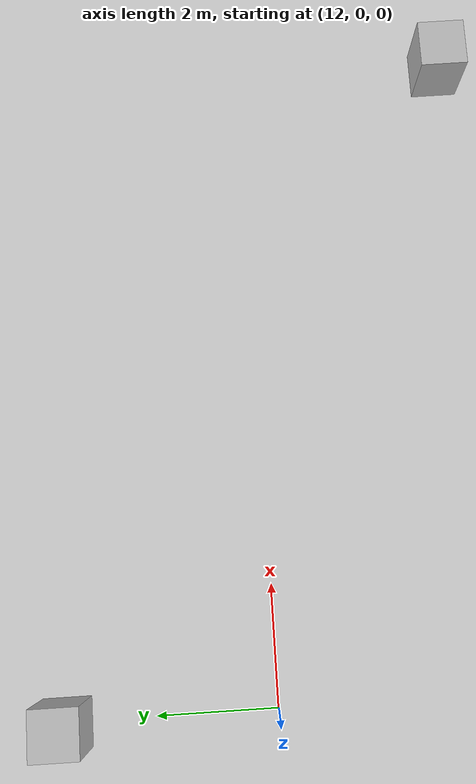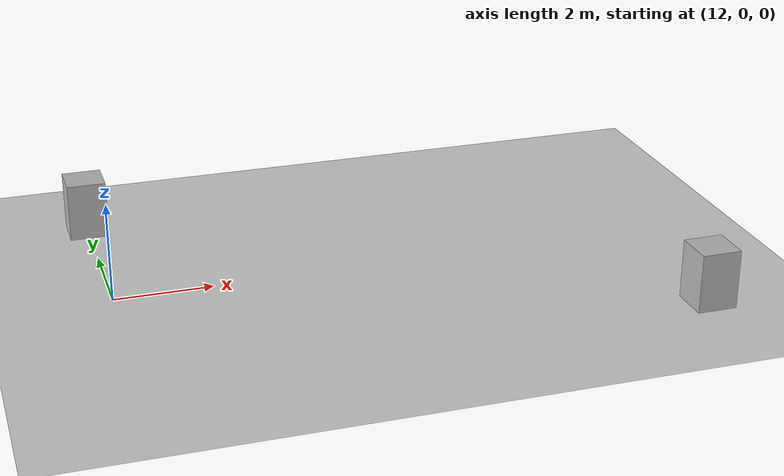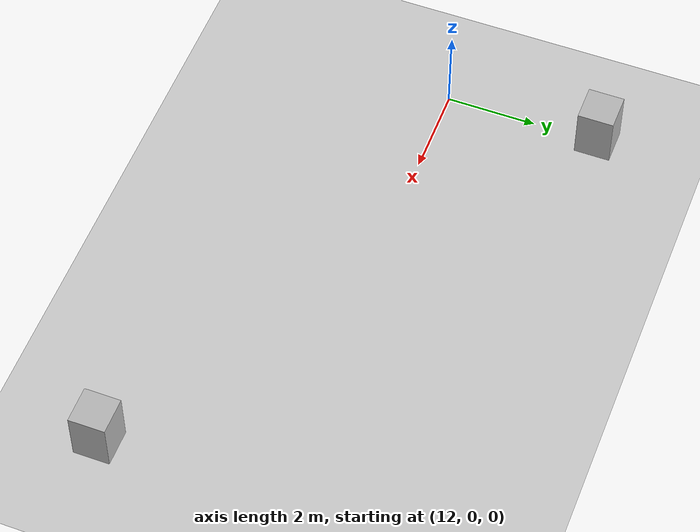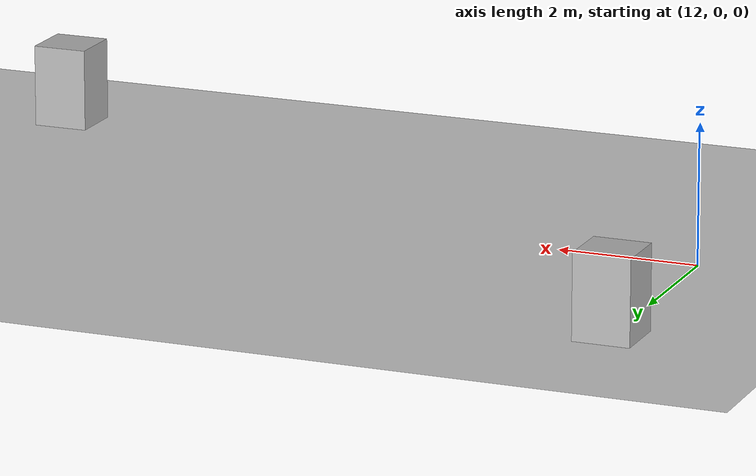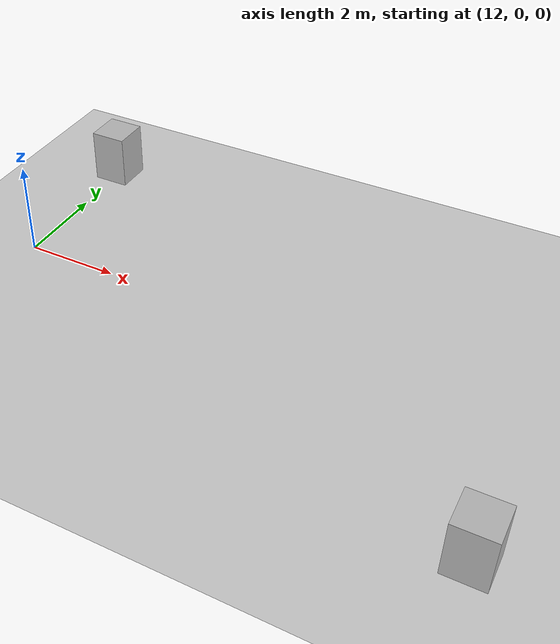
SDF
<?xml version="1.0"?>
<sdf version="1.6">
  <world name="v2-04g-p2-q1-qual-braking-v140-s5340">
    <gravity>0 0 -9.81</gravity>
    <physics name="v2_deterministic" type="ode">
      <max_step_size>0.002</max_step_size>
      <real_time_update_rate>500</real_time_update_rate>
    </physics>
    <include>
      <uri>model://sun</uri>
    </include>
    <include>
      <uri>model://ground_plane</uri>
    </include>
    <model name="cruise-left">
      <static>true</static>
      <pose>11.992620561 3.459230178 0.600000000 0 0 -0.000122873</pose>
      <link name="link">
        <collision name="collision">
          <geometry>
            <box>
              <size>0.800000 0.800000 1.200000</size>
            </box>
          </geometry>
        </collision>
        <visual name="visual">
          <geometry>
            <box>
              <size>0.800000 0.800000 1.200000</size>
            </box>
          </geometry>
        </visual>
      </link>
    </model>
    <model name="cruise-right">
      <static>true</static>
      <pose>23.007019226 -3.554707335 0.600000000 0 0 0.002181134</pose>
      <link name="link">
        <collision name="collision">
          <geometry>
            <box>
              <size>0.800000 0.800000 1.200000</size>
            </box>
          </geometry>
        </collision>
        <visual name="visual">
          <geometry>
            <box>
              <size>0.800000 0.800000 1.200000</size>
            </box>
          </geometry>
        </visual>
      </link>
    </model>
  </world>
</sdf>
